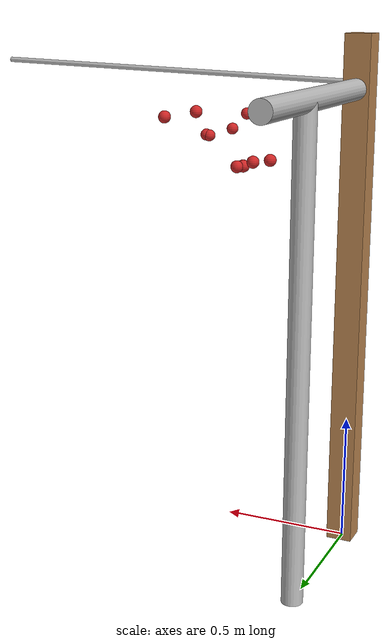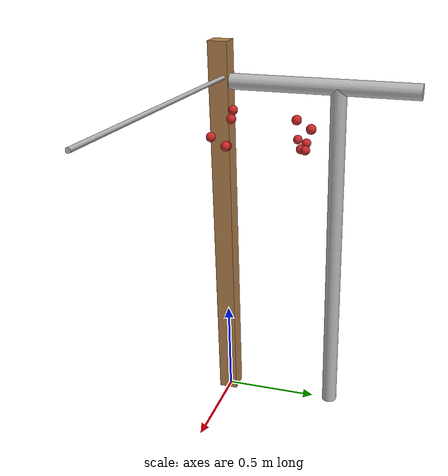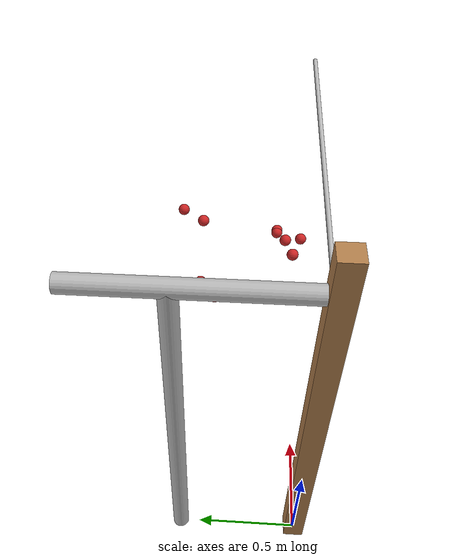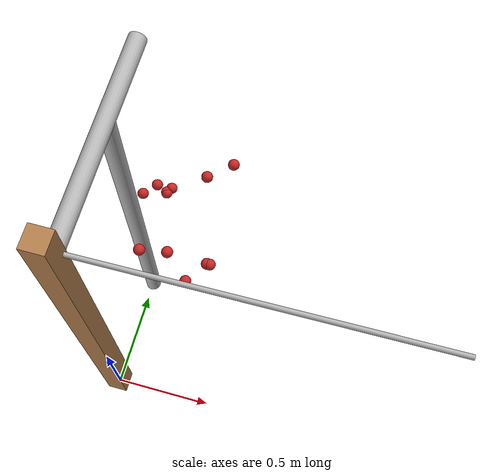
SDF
<sdf version="1.4">
 <model name="pergola">
  <include><name>post_0</name><uri>model://post</uri></include>
  <include><name>tree_0</name><pose>0.0 0.6 0 0 0 0</pose><uri>model://tree_trunk</uri></include>
  <link name="baseBranch_0">
   <pose>0.0 0.5 1.8 1.5707963267948966 0 0</pose>
   <collision name="collision">
    <geometry><cylinder><radius>0.04</radius><length>1.0</length></cylinder></geometry>
   </collision>
   <visual name="visual">
    <geometry><cylinder><radius>0.04</radius><length>1.0</length></cylinder></geometry>
    <material>
     <script>
      <uri>model://tree_trunk/materials/scripts</uri>
      <uri>model://tree_trunk/materials/textures</uri>
      <name>Tree/Bark</name>
     </script>
    </material>
   </visual>
   <inertial>
    <mass>10</mass>
    <inertia>
     <ixx>0.8373333333333332</ixx>
     <ixy>0.0</ixy>
     <ixz>0.0</ixz>
     <iyy>0.8373333333333332</iyy>
     <iyz>0.0</iyz>
     <izz>0.008</izz>
    </inertia>
   </inertial>
  </link>
  <link name="vine_0">
   <pose>0.75 0.03 1.85 0 1.5374753309166493 0</pose>
   <collision name="collision">
    <geometry><cylinder><radius>0.01</radius><length>1.5008331019803633</length></cylinder></geometry>
   </collision>
   <visual name="visual">
    <geometry><cylinder><radius>0.01</radius><length>1.5008331019803633</length></cylinder></geometry>
    <material>
     <script>
      <uri>model://tree_trunk/materials/scripts</uri>
      <uri>model://tree_trunk/materials/textures</uri>
      <name>Tree/Bark</name>
     </script>
    </material>
   </visual>
   <inertial>
    <mass>5</mass>
    <inertia>
     <ixx>0.9386666666666668</ixx>
     <ixy>0.0</ixy>
     <ixz>0.0</ixz>
     <iyy>0.9386666666666668</iyy>
     <iyz>0.0</iyz>
     <izz>0.00025</izz>
    </inertia>
   </inertial>
  </link>
  <link name="fruit_23">
   <pose>0.17838950000727472 0.44280647260613704 1.5787168592233463 0 0 0</pose>
   <collision name="fruit_collision_23"><geometry><sphere><radius>0.022</radius></sphere></geometry></collision>
   <visual name="visual">
    <geometry><sphere><radius>0.022</radius></sphere></geometry>
    <material><script><name>Gazebo/Red</name></script></material>
   </visual>
   <inertial>
    <mass>0.05</mass>
    <inertia>
     <ixx>9.679999999999999e-06</ixx>
     <ixy>0.0</ixy>
     <ixz>0.0</ixz>
     <iyy>9.679999999999999e-06</iyy>
     <iyz>0.0</iyz>
     <izz>9.679999999999999e-06</izz>
    </inertia>
   </inertial>
   <sensor name="fruit_contact_23" type="contact">
    <plugin name="contact_plugin_23" filename="libcontact_plugin.so"/>
    <contact><collision>fruit_collision_23</collision><topic>fruit_contact_topic_23</topic></contact>
   </sensor>
  </link>
  <link name="fruit_54">
   <pose>0.4608138666985999 0.11017564480001754 1.6426572059905125 0 0 0</pose>
   <collision name="fruit_collision_54"><geometry><sphere><radius>0.022</radius></sphere></geometry></collision>
   <visual name="visual">
    <geometry><sphere><radius>0.022</radius></sphere></geometry>
    <material><script><name>Gazebo/Red</name></script></material>
   </visual>
   <inertial>
    <mass>0.05</mass>
    <inertia>
     <ixx>9.679999999999999e-06</ixx>
     <ixy>0.0</ixy>
     <ixz>0.0</ixz>
     <iyy>9.679999999999999e-06</iyy>
     <iyz>0.0</iyz>
     <izz>9.679999999999999e-06</izz>
    </inertia>
   </inertial>
   <sensor name="fruit_contact_54" type="contact">
    <plugin name="contact_plugin_54" filename="libcontact_plugin.so"/>
    <contact><collision>fruit_collision_54</collision><topic>fruit_contact_topic_54</topic></contact>
   </sensor>
  </link>
  <link name="fruit_71">
   <pose>0.43442971942578773 0.5018166307129496 1.7410068615425283 0 0 0</pose>
   <collision name="fruit_collision_71"><geometry><sphere><radius>0.022</radius></sphere></geometry></collision>
   <visual name="visual">
    <geometry><sphere><radius>0.022</radius></sphere></geometry>
    <material><script><name>Gazebo/Red</name></script></material>
   </visual>
   <inertial>
    <mass>0.05</mass>
    <inertia>
     <ixx>9.679999999999999e-06</ixx>
     <ixy>0.0</ixy>
     <ixz>0.0</ixz>
     <iyy>9.679999999999999e-06</iyy>
     <iyz>0.0</iyz>
     <izz>9.679999999999999e-06</izz>
    </inertia>
   </inertial>
   <sensor name="fruit_contact_71" type="contact">
    <plugin name="contact_plugin_71" filename="libcontact_plugin.so"/>
    <contact><collision>fruit_collision_71</collision><topic>fruit_contact_topic_71</topic></contact>
   </sensor>
  </link>
  <link name="fruit_86">
   <pose>0.275594338710083 0.15492177835238893 1.725598676295926 0 0 0</pose>
   <collision name="fruit_collision_86"><geometry><sphere><radius>0.022</radius></sphere></geometry></collision>
   <visual name="visual">
    <geometry><sphere><radius>0.022</radius></sphere></geometry>
    <material><script><name>Gazebo/Red</name></script></material>
   </visual>
   <inertial>
    <mass>0.05</mass>
    <inertia>
     <ixx>9.679999999999999e-06</ixx>
     <ixy>0.0</ixy>
     <ixz>0.0</ixz>
     <iyy>9.679999999999999e-06</iyy>
     <iyz>0.0</iyz>
     <izz>9.679999999999999e-06</izz>
    </inertia>
   </inertial>
   <sensor name="fruit_contact_86" type="contact">
    <plugin name="contact_plugin_86" filename="libcontact_plugin.so"/>
    <contact><collision>fruit_collision_86</collision><topic>fruit_contact_topic_86</topic></contact>
   </sensor>
  </link>
  <link name="fruit_230">
   <pose>0.527688939426029 0.20362445641269858 1.6264769197186522 0 0 0</pose>
   <collision name="fruit_collision_230"><geometry><sphere><radius>0.022</radius></sphere></geometry></collision>
   <visual name="visual">
    <geometry><sphere><radius>0.022</radius></sphere></geometry>
    <material><script><name>Gazebo/Red</name></script></material>
   </visual>
   <inertial>
    <mass>0.05</mass>
    <inertia>
     <ixx>9.679999999999999e-06</ixx>
     <ixy>0.0</ixy>
     <ixz>0.0</ixz>
     <iyy>9.679999999999999e-06</iyy>
     <iyz>0.0</iyz>
     <izz>9.679999999999999e-06</izz>
    </inertia>
   </inertial>
   <sensor name="fruit_contact_230" type="contact">
    <plugin name="contact_plugin_230" filename="libcontact_plugin.so"/>
    <contact><collision>fruit_collision_230</collision><topic>fruit_contact_topic_230</topic></contact>
   </sensor>
  </link>
  <link name="fruit_361">
   <pose>0.26456522274091365 0.4788223898397877 1.5591097794433806 0 0 0</pose>
   <collision name="fruit_collision_361"><geometry><sphere><radius>0.022</radius></sphere></geometry></collision>
   <visual name="visual">
    <geometry><sphere><radius>0.022</radius></sphere></geometry>
    <material><script><name>Gazebo/Red</name></script></material>
   </visual>
   <inertial>
    <mass>0.05</mass>
    <inertia>
     <ixx>9.679999999999999e-06</ixx>
     <ixy>0.0</ixy>
     <ixz>0.0</ixz>
     <iyy>9.679999999999999e-06</iyy>
     <iyz>0.0</iyz>
     <izz>9.679999999999999e-06</izz>
    </inertia>
   </inertial>
   <sensor name="fruit_contact_361" type="contact">
    <plugin name="contact_plugin_361" filename="libcontact_plugin.so"/>
    <contact><collision>fruit_collision_361</collision><topic>fruit_contact_topic_361</topic></contact>
   </sensor>
  </link>
  <link name="fruit_377">
   <pose>0.37412701253485137 0.17919558303503158 1.7090603444958492 0 0 0</pose>
   <collision name="fruit_collision_377"><geometry><sphere><radius>0.022</radius></sphere></geometry></collision>
   <visual name="visual">
    <geometry><sphere><radius>0.022</radius></sphere></geometry>
    <material><script><name>Gazebo/Red</name></script></material>
   </visual>
   <inertial>
    <mass>0.05</mass>
    <inertia>
     <ixx>9.679999999999999e-06</ixx>
     <ixy>0.0</ixy>
     <ixz>0.0</ixz>
     <iyy>9.679999999999999e-06</iyy>
     <iyz>0.0</iyz>
     <izz>9.679999999999999e-06</izz>
    </inertia>
   </inertial>
   <sensor name="fruit_contact_377" type="contact">
    <plugin name="contact_plugin_377" filename="libcontact_plugin.so"/>
    <contact><collision>fruit_collision_377</collision><topic>fruit_contact_topic_377</topic></contact>
   </sensor>
  </link>
  <link name="fruit_422">
   <pose>0.2774992321967428 0.5044410769057319 1.5587136018633487 0 0 0</pose>
   <collision name="fruit_collision_422"><geometry><sphere><radius>0.022</radius></sphere></geometry></collision>
   <visual name="visual">
    <geometry><sphere><radius>0.022</radius></sphere></geometry>
    <material><script><name>Gazebo/Red</name></script></material>
   </visual>
   <inertial>
    <mass>0.05</mass>
    <inertia>
     <ixx>9.679999999999999e-06</ixx>
     <ixy>0.0</ixy>
     <ixz>0.0</ixz>
     <iyy>9.679999999999999e-06</iyy>
     <iyz>0.0</iyz>
     <izz>9.679999999999999e-06</izz>
    </inertia>
   </inertial>
   <sensor name="fruit_contact_422" type="contact">
    <plugin name="contact_plugin_422" filename="libcontact_plugin.so"/>
    <contact><collision>fruit_collision_422</collision><topic>fruit_contact_topic_422</topic></contact>
   </sensor>
  </link>
  <link name="fruit_432">
   <pose>0.5155893708829253 0.5860668077323039 1.7269484883405122 0 0 0</pose>
   <collision name="fruit_collision_432"><geometry><sphere><radius>0.022</radius></sphere></geometry></collision>
   <visual name="visual">
    <geometry><sphere><radius>0.022</radius></sphere></geometry>
    <material><script><name>Gazebo/Red</name></script></material>
   </visual>
   <inertial>
    <mass>0.05</mass>
    <inertia>
     <ixx>9.679999999999999e-06</ixx>
     <ixy>0.0</ixy>
     <ixz>0.0</ixz>
     <iyy>9.679999999999999e-06</iyy>
     <iyz>0.0</iyz>
     <izz>9.679999999999999e-06</izz>
    </inertia>
   </inertial>
   <sensor name="fruit_contact_432" type="contact">
    <plugin name="contact_plugin_432" filename="libcontact_plugin.so"/>
    <contact><collision>fruit_collision_432</collision><topic>fruit_contact_topic_432</topic></contact>
   </sensor>
  </link>
  <link name="fruit_447">
   <pose>0.5148527993166642 0.20457318775339553 1.6241878255325513 0 0 0</pose>
   <collision name="fruit_collision_447"><geometry><sphere><radius>0.022</radius></sphere></geometry></collision>
   <visual name="visual">
    <geometry><sphere><radius>0.022</radius></sphere></geometry>
    <material><script><name>Gazebo/Red</name></script></material>
   </visual>
   <inertial>
    <mass>0.05</mass>
    <inertia>
     <ixx>9.679999999999999e-06</ixx>
     <ixy>0.0</ixy>
     <ixz>0.0</ixz>
     <iyy>9.679999999999999e-06</iyy>
     <iyz>0.0</iyz>
     <izz>9.679999999999999e-06</izz>
    </inertia>
   </inertial>
   <sensor name="fruit_contact_447" type="contact">
    <plugin name="contact_plugin_447" filename="libcontact_plugin.so"/>
    <contact><collision>fruit_collision_447</collision><topic>fruit_contact_topic_447</topic></contact>
   </sensor>
  </link>
  <link name="fruit_483">
   <pose>0.26252982392523616 0.4822186959083174 1.5590117838517028 0 0 0</pose>
   <collision name="fruit_collision_483"><geometry><sphere><radius>0.022</radius></sphere></geometry></collision>
   <visual name="visual">
    <geometry><sphere><radius>0.022</radius></sphere></geometry>
    <material><script><name>Gazebo/Red</name></script></material>
   </visual>
   <inertial>
    <mass>0.05</mass>
    <inertia>
     <ixx>9.679999999999999e-06</ixx>
     <ixy>0.0</ixy>
     <ixz>0.0</ixz>
     <iyy>9.679999999999999e-06</iyy>
     <iyz>0.0</iyz>
     <izz>9.679999999999999e-06</izz>
    </inertia>
   </inertial>
   <sensor name="fruit_contact_483" type="contact">
    <plugin name="contact_plugin_483" filename="libcontact_plugin.so"/>
    <contact><collision>fruit_collision_483</collision><topic>fruit_contact_topic_483</topic></contact>
   </sensor>
  </link>
  <link name="fruit_490">
   <pose>0.22137207541575596 0.49548637456895606 1.576829014274369 0 0 0</pose>
   <collision name="fruit_collision_490"><geometry><sphere><radius>0.022</radius></sphere></geometry></collision>
   <visual name="visual">
    <geometry><sphere><radius>0.022</radius></sphere></geometry>
    <material><script><name>Gazebo/Red</name></script></material>
   </visual>
   <inertial>
    <mass>0.05</mass>
    <inertia>
     <ixx>9.679999999999999e-06</ixx>
     <ixy>0.0</ixy>
     <ixz>0.0</ixz>
     <iyy>9.679999999999999e-06</iyy>
     <iyz>0.0</iyz>
     <izz>9.679999999999999e-06</izz>
    </inertia>
   </inertial>
   <sensor name="fruit_contact_490" type="contact">
    <plugin name="contact_plugin_490" filename="libcontact_plugin.so"/>
    <contact><collision>fruit_collision_490</collision><topic>fruit_contact_topic_490</topic></contact>
   </sensor>
  </link>
 </model>
</sdf>
